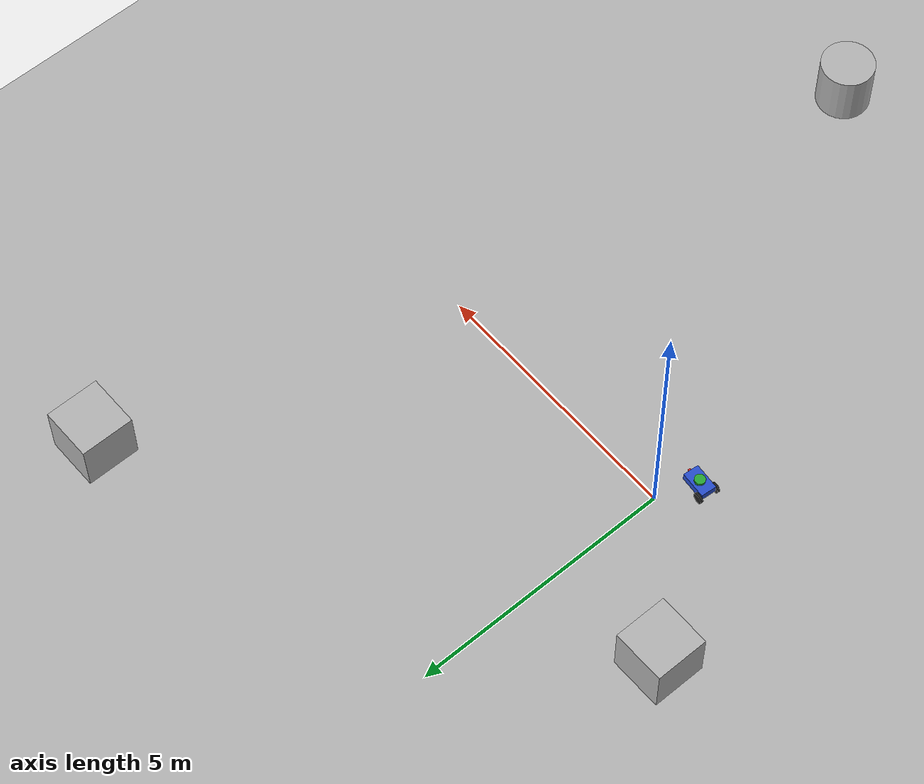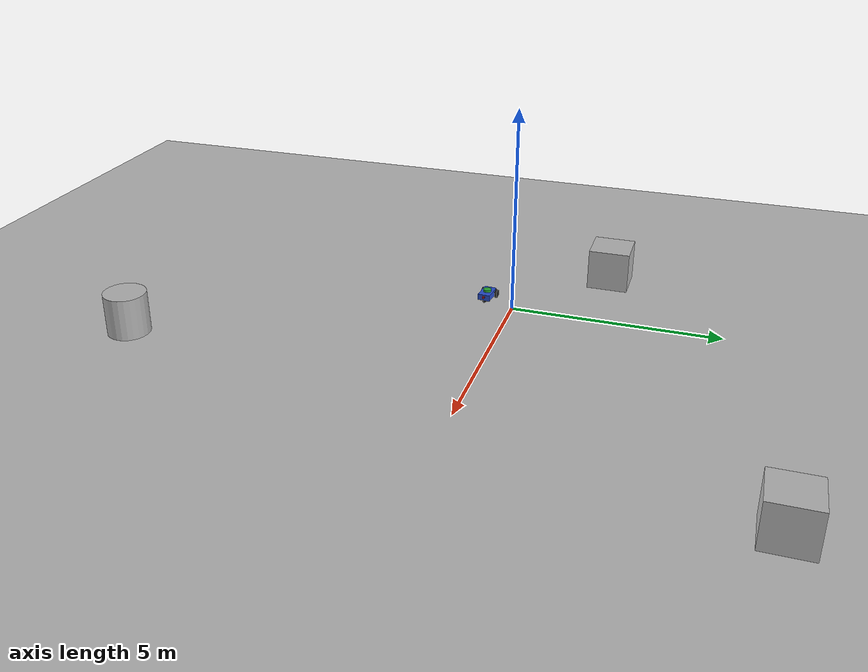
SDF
<sdf version="1.9">
 <world name="default">
  <plugin name="gz::sim::systems::Physics" filename="gz-sim-physics-system"/>
  <plugin name="gz::sim::systems::UserCommands" filename="gz-sim-user-commands-system"/>
  <plugin name="gz::sim::systems::SceneBroadcaster" filename="gz-sim-scene-broadcaster-system"/>
  <plugin name="gz::sim::systems::Sensors" filename="gz-sim-sensors-system">
   <render_engine>ogre2</render_engine>
  </plugin>
  <plugin name="gz::sim::systems::Imu" filename="gz-sim-imu-system"/>
  <scene><shadows>false</shadows><ambient>0.4 0.4 0.4 1</ambient><background>0.7 0.7 0.7 1</background></scene>
  <physics type="ode">
   <real_time_update_rate>1000</real_time_update_rate>
   <max_step_size>0.001</max_step_size>
   <real_time_factor>1</real_time_factor>
   <ode>
    <solver>
     <type>quick</type>
     <iters>150</iters>
     <precon_iters>0</precon_iters>
     <sor>1.3999999999999999</sor>
     <use_dynamic_moi_rescaling>true</use_dynamic_moi_rescaling>
    </solver>
    <constraints>
     <cfm>1.0000000000000001e-05</cfm>
     <erp>0.20000000000000001</erp>
     <contact_max_correcting_vel>2000</contact_max_correcting_vel>
     <contact_surface_layer>0.01</contact_surface_layer>
    </constraints>
   </ode>
  </physics>
  <gravity>0 0 -9.8</gravity>
  <magnetic_field>6e-06 2.3e-05 -4.2e-05</magnetic_field>
  <atmosphere type="adiabatic"/>
  <model name="ground_plane">
   <static>true</static>
   <link name="link">
    <collision name="collision">
     <geometry><plane><normal>0 0 1</normal><size>100 100</size></plane></geometry>
     <surface><friction><ode><mu>100</mu><mu2>50</mu2></ode></friction></surface>
    </collision>
    <visual name="visual">
     <cast_shadows>false</cast_shadows>
     <geometry><plane><normal>0 0 1</normal><size>100 100</size></plane></geometry>
     <material>
      <ambient>0.3 0.3 0.3 1</ambient>
      <diffuse>0.7 0.7 0.7 1</diffuse>
      <specular>0.01 0.01 0.01 1</specular>
     </material>
    </visual>
    <inertial>
     <mass>1</mass>
     <inertia><ixx>1</ixx><ixy>0</ixy><ixz>0</ixz><iyy>1</iyy><iyz>0</iyz><izz>1</izz></inertia>
    </inertial>
   </link>
  </model>
  <model name="diffbot">
   <link name="base_link">
    <inertial>
     <pose>0.1175 0 0.0275 0 -0 0</pose>
     <mass>0.40000000000000002</mass>
     <inertia>
      <ixx>0.0147075</ixx>
      <ixy>0</ixy>
      <ixz>0.0030225</ixz>
      <iyy>0.020475</iyy>
      <iyz>0</iyz>
      <izz>0.017767499999999999</izz>
     </inertia>
    </inertial>
    <collision name="base_link_collision"><geometry><box><size>0.5 0.3 0.15</size></box></geometry></collision>
    <collision name="base_link_fixed_joint_lump__camera_collision_1">
     <pose>0.27000000000000002 0 0.01 0 0 0</pose>
     <geometry><box><size>0.05 0.05 0.05</size></box></geometry>
    </collision>
    <collision name="base_link_fixed_joint_lump__caster_wheel_collision_2">
     <pose>0.20000000000000001 0 -0.10000000000000001 0 0 0</pose>
     <geometry><sphere><radius>0.050000000000000003</radius></sphere></geometry>
     <surface><friction><ode><mu>0.10000000000000001</mu><mu2>0.10000000000000001</mu2></ode></friction></surface>
    </collision>
    <collision name="base_link_fixed_joint_lump__lidar_collision_3">
     <pose>0 0 0.10000000000000001 0 0 0</pose>
     <geometry>
      <cylinder><length>0.050000000000000003</length><radius>0.10000000000000001</radius></cylinder>
     </geometry>
    </collision>
    <visual name="base_link_visual">
     <geometry><box><size>0.5 0.3 0.15</size></box></geometry>
     <material>
      <script><name>Gazebo/Blue</name><uri>file://media/materials/scripts/gazebo.material</uri></script>
      <diffuse>0 0 1 1</diffuse>
      <ambient>0 0 1 1</ambient>
     </material>
    </visual>
    <visual name="base_link_fixed_joint_lump__camera_visual_1">
     <pose>0.27000000000000002 0 0.01 0 0 0</pose>
     <geometry><box><size>0.05 0.05 0.05</size></box></geometry>
     <material>
      <script><name>Gazebo/Red</name><uri>file://media/materials/scripts/gazebo.material</uri></script>
      <diffuse>1 0 0 1</diffuse>
      <ambient>1 0 0 1</ambient>
     </material>
    </visual>
    <visual name="base_link_fixed_joint_lump__caster_wheel_visual_2">
     <pose>0.20000000000000001 0 -0.10000000000000001 0 0 0</pose>
     <geometry><sphere><radius>0.050000000000000003</radius></sphere></geometry>
     <material>
      <script><name>Gazebo/Black</name><uri>file://media/materials/scripts/gazebo.material</uri></script>
      <diffuse>0 0 0 1</diffuse>
      <ambient>0 0 0 1</ambient>
     </material>
    </visual>
    <visual name="base_link_fixed_joint_lump__lidar_visual_3">
     <pose>0 0 0.10000000000000001 0 0 0</pose>
     <geometry>
      <cylinder><length>0.050000000000000003</length><radius>0.10000000000000001</radius></cylinder>
     </geometry>
     <material>
      <script><name>Gazebo/Green</name><uri>file://media/materials/scripts/gazebo.material</uri></script>
      <diffuse>0 0 0 1</diffuse>
      <ambient>0 0 0 1</ambient>
     </material>
    </visual>
    <sensor name="camera" type="camera">
     <pose>0.27 0 0.01 0 -0 0</pose>
     <topic>camera/image_raw</topic>
     <update_rate>30</update_rate>
     <enable_metrics>false</enable_metrics>
     <camera name="head">
      <horizontal_fov>1.3962600000000001</horizontal_fov>
      <image><width>800</width><height>600</height><format>RGB_INT8</format><anti_aliasing>4</anti_aliasing></image>
      <camera_info_topic>camera/camera_info</camera_info_topic>
      <triggered>false</triggered>
      <clip><near>0.02</near><far>300</far></clip>
      <save enabled="false"><path>__default__</path></save>
      <visibility_mask>4294967295</visibility_mask>
      <noise><type>gaussian</type><mean>0</mean><stddev>0.0070000000000000001</stddev></noise>
      <distortion><k1>0</k1><k2>0</k2><k3>0</k3><p1>0</p1><p2>0</p2><center>0.5 0.5</center></distortion>
      <lens>
       <type>stereographic</type>
       <scale_to_hfov>true</scale_to_hfov>
       <cutoff_angle>1.5708</cutoff_angle>
       <env_texture_size>256</env_texture_size>
      </lens>
     </camera>
    </sensor>
    <sensor name="lidar" type="gpu_lidar">
     <pose>0 0 0.1 0 -0 0</pose>
     <topic>scan</topic>
     <update_rate>10</update_rate>
     <enable_metrics>false</enable_metrics>
     <lidar>
      <scan>
       <horizontal>
        <samples>360</samples>
        <resolution>1</resolution>
        <min_angle>-3.1415899999999999</min_angle>
        <max_angle>3.1415899999999999</max_angle>
       </horizontal>
       <vertical>
        <samples>1</samples>
        <min_angle>0</min_angle>
        <max_angle>0</max_angle>
        <resolution>1</resolution>
       </vertical>
      </scan>
      <range><min>0.20000000000000001</min><max>30</max><resolution>0.01</resolution></range>
      <noise><type>gaussian</type><mean>0</mean><stddev>0.01</stddev></noise>
      <visibility_mask>4294967295</visibility_mask>
     </lidar>
    </sensor>
   </link>
   <joint name="left_wheel_joint" type="revolute">
    <parent>base_link</parent>
    <child>left_wheel</child>
    <axis>
     <xyz>0 0 1</xyz>
     <limit>
      <lower>-inf</lower>
      <upper>inf</upper>
      <effort>inf</effort>
      <velocity>inf</velocity>
      <stiffness>100000000</stiffness>
      <dissipation>1</dissipation>
     </limit>
     <dynamics>
      <spring_reference>0</spring_reference>
      <spring_stiffness>0</spring_stiffness>
      <damping>0</damping>
      <friction>0</friction>
     </dynamics>
    </axis>
   </joint>
   <link name="left_wheel">
    <pose>-0.2 0.175 -0.05 -1.5708 0.292264 -1e-06</pose>
    <inertial>
     <mass>0.5</mass>
     <inertia><ixx>0.01</ixx><ixy>0</ixy><ixz>0</ixz><iyy>0.01</iyy><iyz>0</iyz><izz>0.01</izz></inertia>
    </inertial>
    <collision name="left_wheel_collision">
     <geometry>
      <cylinder><length>0.050000000000000003</length><radius>0.10000000000000001</radius></cylinder>
     </geometry>
     <surface><friction><ode><mu>1</mu><mu2>1</mu2></ode></friction></surface>
    </collision>
    <visual name="left_wheel_visual">
     <geometry>
      <cylinder><length>0.050000000000000003</length><radius>0.10000000000000001</radius></cylinder>
     </geometry>
     <material>
      <script><name>Gazebo/Black</name><uri>file://media/materials/scripts/gazebo.material</uri></script>
      <diffuse>0 0 0 1</diffuse>
      <ambient>0 0 0 1</ambient>
     </material>
    </visual>
   </link>
   <joint name="right_wheel_joint" type="revolute">
    <parent>base_link</parent>
    <child>right_wheel</child>
    <axis>
     <xyz>0 0 1</xyz>
     <limit>
      <lower>-inf</lower>
      <upper>inf</upper>
      <effort>inf</effort>
      <velocity>inf</velocity>
      <stiffness>100000000</stiffness>
      <dissipation>1</dissipation>
     </limit>
     <dynamics>
      <spring_reference>0</spring_reference>
      <spring_stiffness>0</spring_stiffness>
      <damping>0</damping>
      <friction>0</friction>
     </dynamics>
    </axis>
   </joint>
   <link name="right_wheel">
    <pose>-0.2 -0.175 -0.05 1.5708 0.059103 -3.14159</pose>
    <inertial>
     <mass>0.5</mass>
     <inertia><ixx>0.01</ixx><ixy>0</ixy><ixz>0</ixz><iyy>0.01</iyy><iyz>0</iyz><izz>0.01</izz></inertia>
    </inertial>
    <collision name="right_wheel_collision">
     <geometry>
      <cylinder><length>0.050000000000000003</length><radius>0.10000000000000001</radius></cylinder>
     </geometry>
     <surface><friction><ode><mu>1</mu><mu2>1</mu2></ode></friction></surface>
    </collision>
    <visual name="right_wheel_visual">
     <geometry>
      <cylinder><length>0.050000000000000003</length><radius>0.10000000000000001</radius></cylinder>
     </geometry>
     <material>
      <script><name>Gazebo/Black</name><uri>file://media/materials/scripts/gazebo.material</uri></script>
      <diffuse>0 0 0 1</diffuse>
      <ambient>0 0 0 1</ambient>
     </material>
    </visual>
   </link>
   <plugin name="gz::sim::systems::DiffDrive" filename="gz-sim-diff-drive-system">
    <left_joint>left_wheel_joint</left_joint>
    <right_joint>right_wheel_joint</right_joint>
    <wheel_separation>0.287</wheel_separation>
    <wheel_radius>0.033</wheel_radius>
    <max_linear_acceleration>0.033</max_linear_acceleration>
    <topic>cmd_vel</topic>
    <odom_topic>odom</odom_topic>
    <frame_id>odom</frame_id>
    <child_frame_id>base_footprint</child_frame_id>
    <odom_publisher_frequency>30</odom_publisher_frequency>
    <tf_topic>/tf</tf_topic>
   </plugin>
   <plugin name="gz::sim::systems::JointStatePublisher" filename="gz-sim-joint-state-publisher-system">
    <update_rate>50</update_rate>
    <joint_name>left_wheel_joint</joint_name>
    <joint_name>right_wheel_joint</joint_name>
    <topic>joint_states</topic>
    <update_rate>30</update_rate>
   </plugin>
   <frame name="camera_joint" attached_to="base_link"><pose>0.27000000000000002 0 0.01 0 0 0</pose></frame>
   <frame name="camera" attached_to="camera_joint"/>
   <frame name="caster_wheel_joint" attached_to="base_link">
    <pose>0.20000000000000001 0 -0.10000000000000001 0 0 0</pose>
   </frame>
   <frame name="caster_wheel" attached_to="caster_wheel_joint"/>
   <frame name="lidar_joint" attached_to="base_link"><pose>0 0 0.10000000000000001 0 0 0</pose></frame>
   <frame name="lidar" attached_to="lidar_joint"/>
   <pose>-0.326766 -0.719166 0.15 0 0 -0.095773</pose>
   <static>false</static>
  </model>
  <model name="box">
   <pose>6.86504 6.4542 0.5 0 0 0</pose>
   <link name="box_link">
    <inertial>
     <inertia><ixx>0.16666</ixx><ixy>0</ixy><ixz>0</ixz><iyy>0.16666</iyy><iyz>0</iyz><izz>0.16666</izz></inertia>
     <mass>1</mass>
    </inertial>
    <collision name="box_collision"><geometry><box><size>1 1 1</size></box></geometry></collision>
    <visual name="box_visual">
     <geometry><box><size>1 1 1</size></box></geometry>
     <material>
      <ambient>0.3 0.3 0.3 1</ambient>
      <diffuse>0.7 0.7 0.7 1</diffuse>
      <specular>1 1 1 1</specular>
     </material>
    </visual>
   </link>
   <static>false</static>
  </model>
  <model name="cylinder">
   <pose>3.89454 -8.21759 0.499999 0 0 -0</pose>
   <link name="cylinder_link">
    <inertial>
     <inertia>
      <ixx>0.14580000000000001</ixx>
      <ixy>0</ixy>
      <ixz>0</ixz>
      <iyy>0.14580000000000001</iyy>
      <iyz>0</iyz>
      <izz>0.125</izz>
     </inertia>
     <mass>1</mass>
    </inertial>
    <collision name="cylinder_collision">
     <geometry><cylinder><radius>0.5</radius><length>1</length></cylinder></geometry>
    </collision>
    <visual name="cylinder_visual">
     <geometry><cylinder><radius>0.5</radius><length>1</length></cylinder></geometry>
     <material>
      <ambient>0.3 0.3 0.3 1</ambient>
      <diffuse>0.7 0.7 0.7 1</diffuse>
      <specular>1 1 1 1</specular>
     </material>
    </visual>
   </link>
   <static>false</static>
  </model>
  <model name="box_0">
   <pose>-2.28758 2.01213 0.499343 -2.1e-05 -0.001172 -0.001868</pose>
   <link name="box_link">
    <inertial>
     <inertia><ixx>0.16666</ixx><ixy>0</ixy><ixz>0</ixz><iyy>0.16666</iyy><iyz>0</iyz><izz>0.16666</izz></inertia>
     <mass>1</mass>
    </inertial>
    <collision name="box_collision"><geometry><box><size>1 1 1</size></box></geometry></collision>
    <visual name="box_visual">
     <geometry><box><size>1 1 1</size></box></geometry>
     <material>
      <ambient>0.3 0.3 0.3 1</ambient>
      <diffuse>0.7 0.7 0.7 1</diffuse>
      <specular>1 1 1 1</specular>
     </material>
    </visual>
   </link>
   <static>false</static>
  </model>
  <light name="sun" type="directional">
   <pose>0 0 10 0 -0 0</pose>
   <intensity>1</intensity>
   <direction>-0.5 0.1 -0.9</direction>
   <diffuse>0.8 0.8 0.8 1</diffuse>
   <specular>0.2 0.2 0.2 1</specular>
   <attenuation>
    <range>1000</range>
    <linear>0.01</linear>
    <constant>0.90000000000000002</constant>
    <quadratic>0.001</quadratic>
   </attenuation>
   <spot><inner_angle>0</inner_angle><outer_angle>0</outer_angle><falloff>0</falloff></spot>
  </light>
 </world>
</sdf>
